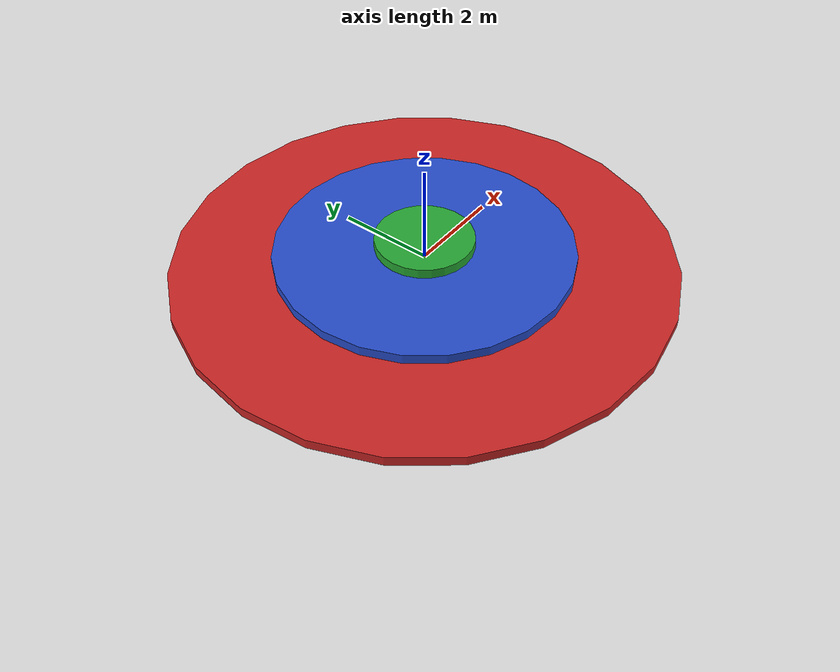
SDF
<?xml version='1.0'?>
<sdf version='1.4'>
  <model name="landing_zone">
  	<static>true</static>

  		<link name='outer_ring'>
  			<pose>0 0 0 0 0 0</pose>

  			<collision name='collision'>
  				<geometry>
  					<cylinder>
  						<radius>5</radius>
  						<length>0.2</length>
  					</cylinder>
  				</geometry>
  			</collision>

  			<visual name='visual'>
  				<geometry>
  					<cylinder>
  						<radius>5</radius>
  						<length>0.2</length>
  					</cylinder>
  				</geometry>
  				<material>
          			<lighting>1</lighting>
          			<script>
            			<uri>file://media/materials/scripts/gazebo.material</uri>
            			<name>Gazebo/Red</name>
          			</script>
        		</material>
  			</visual>
  		</link>

  		<link name='middle_ring'>
  			<pose>0 0 0.2 0 0 0</pose>

  			<collision name='collision'>
  				<geometry>
  					<cylinder>
  						<radius>3</radius>
  						<length>0.2</length>
  					</cylinder>
  				</geometry>
  			</collision>

  			<visual name='visual'>
  				<geometry>
  					<cylinder>
  						<radius>3</radius>
  						<length>0.2</length>
  					</cylinder>
  				</geometry>
  				<material>
          			<lighting>1</lighting>
          			<script>
            			<uri>file://media/materials/scripts/gazebo.material</uri>
            			<name>Gazebo/Blue</name>
          			</script>
        		</material>
  			</visual>
  		</link>

  		<link name='inner_ring'>
  			<pose>0 0 0.4 0 0 0</pose>

  			<collision name='collision'>
  				<geometry>
  					<cylinder>
  						<radius>1</radius>
  						<length>0.2</length>
  					</cylinder>
  				</geometry>
  			</collision>

  			<visual name='visual'>
  				<geometry>
  					<cylinder>
  						<radius>1</radius>
  						<length>0.2</length>
  					</cylinder>
  				</geometry>
  				<material>
          			<lighting>1</lighting>
          			<script>
            			<uri>file://media/materials/scripts/gazebo.material</uri>
            			<name>Gazebo/Green</name>
          			</script>
        		</material>
  			</visual>
  		</link>

  </model>
</sdf>
